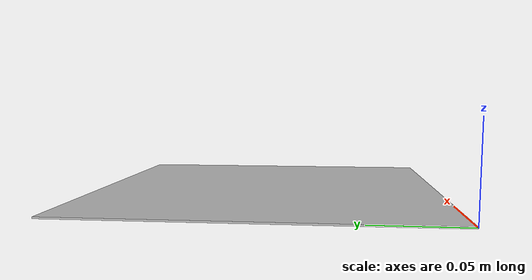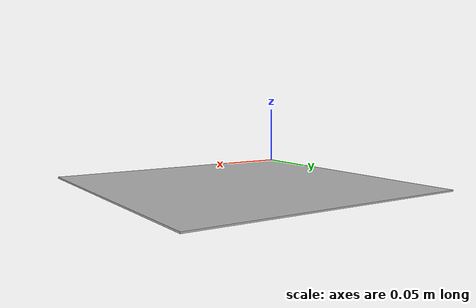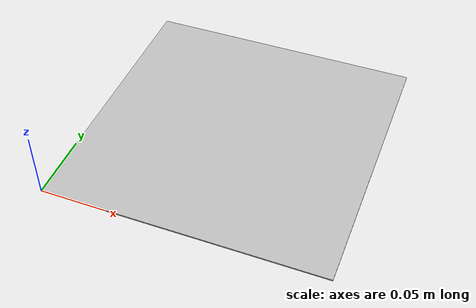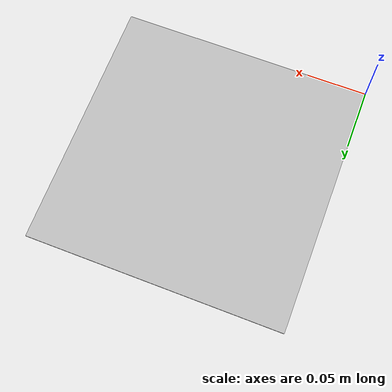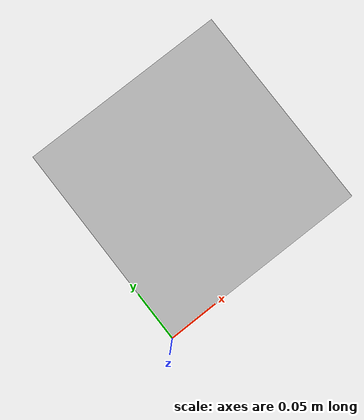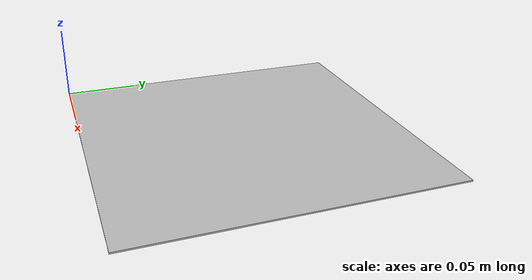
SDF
<?xml version="1.0" ?>

<sdf version="1.6">
    <model name="base1">
    <static>true</static>
      <link name="link">
        <pose>0.105 0.105 0 0 0 0</pose>
        <visual name="visual">
          <geometry>
            <box>
              <size>0.210 0.210 0.001</size>
            </box>
          </geometry>
        <material>
          <script>
            <uri>model://base1/materials/scripts/</uri>
            <uri>model://base1/materials/textures/</uri>
            <name>Base/Image1</name>
          </script>
        </material>
        </visual>
      </link>
    </model>

</sdf>
